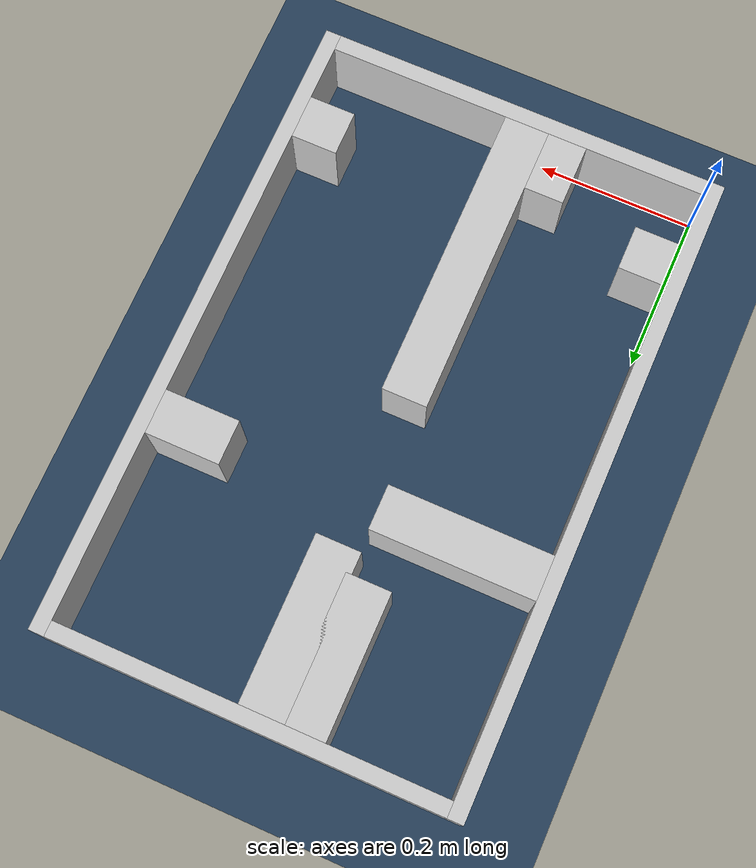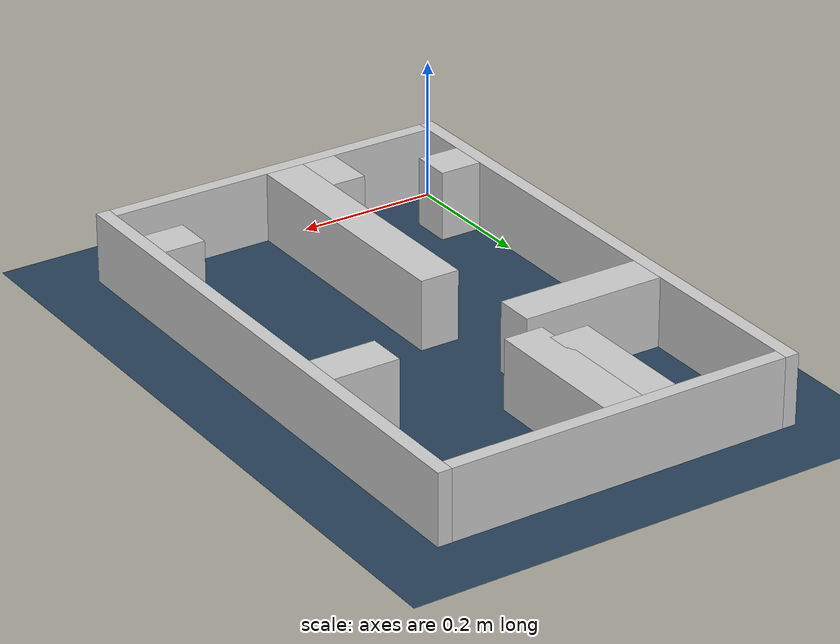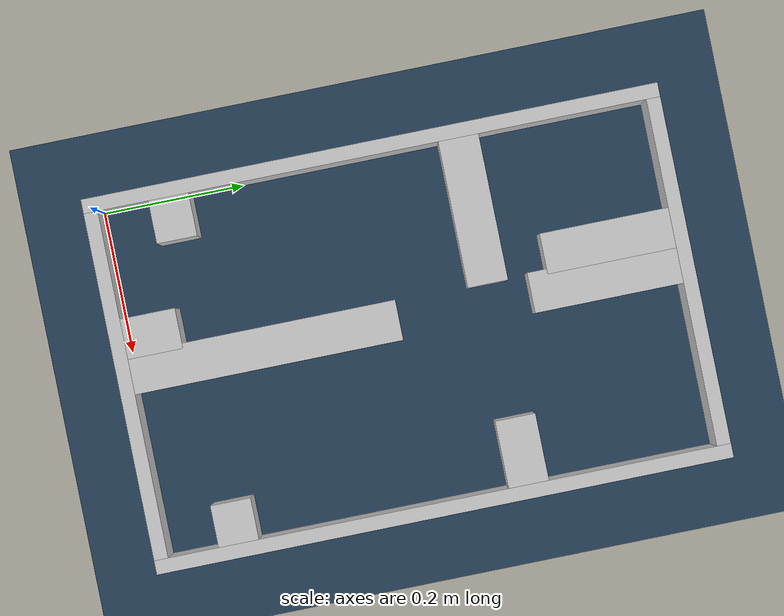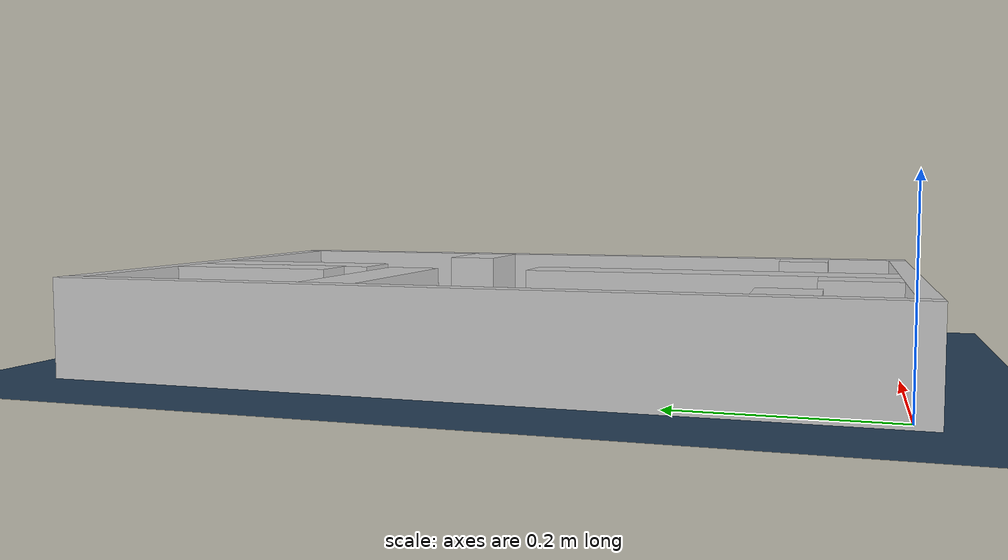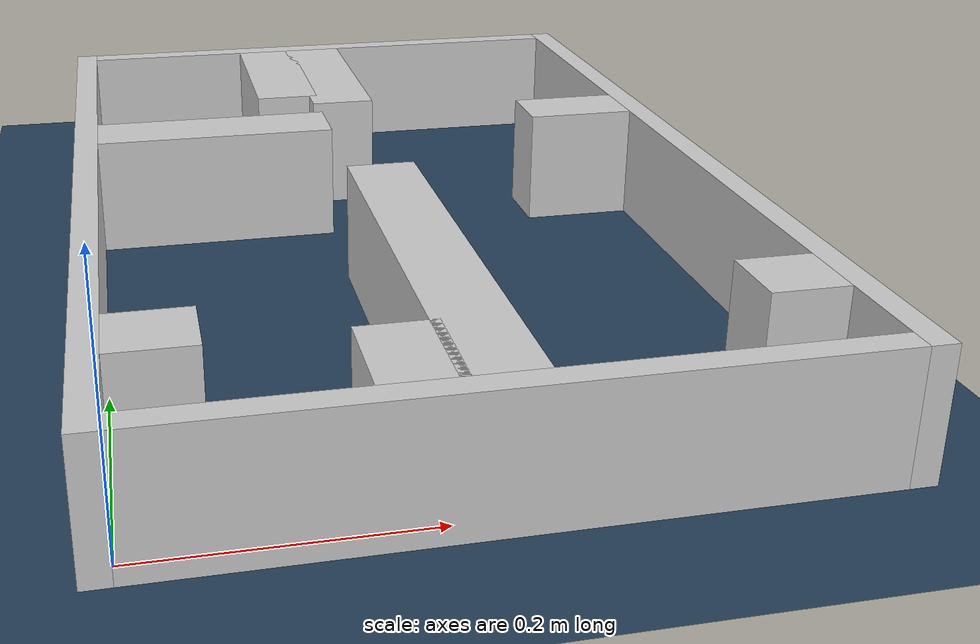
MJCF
<?xml version="1.0" ?>
<mujoco model="generated_real_template">
  <compiler angle="degree"/>
  <option timestep="0.002" integrator="implicitfast" iterations="100" cone="elliptic"/>
  <default>
    <geom density="1"/>
  </default>
  <asset>
    <texture builtin="gradient" height="3072" rgb1="0.3 0.5 0.7" rgb2="0 0 0" type="skybox" width="512"/>
    <texture builtin="checker" height="300" mark="edge" markrgb="0.8 0.8 0.8" name="groundplane" rgb1="0.2 0.3 0.4" rgb2="0.1 0.2 0.3" type="2d" width="300"/>
    <material name="groundplane" reflectance="0.2" texrepeat="5 5" texture="groundplane" texuniform="true"/>
  </asset>
  <worldbody>
    <light dir="0 0 -1" directional="true" pos="0 0 1.5"/>
    <geom name="floor" type="plane" condim="4" friction="0.5 0.005 0.001" material="groundplane" size="0 0 0.05"/>
    <body name="walls">
      <geom name="wall_boundary_left" type="box" condim="4" friction="1.0 0.005 0.0001" rgba="0.8 0.8 0.8 1" pos="-0.010000 0.387500 0.050000" euler="0 0 0.000000" size="0.010000 0.407500 0.050000"/>
      <geom name="wall_boundary_right" type="box" condim="4" friction="1.0 0.005 0.0001" rgba="0.8 0.8 0.8 1" pos="0.500000 0.387500 0.050000" euler="0 0 0.000000" size="0.010000 0.407500 0.050000"/>
      <geom name="wall_boundary_bottom" type="box" condim="4" friction="1.0 0.005 0.0001" rgba="0.8 0.8 0.8 1" pos="0.245000 -0.010000 0.050000" euler="0 0 0.000000" size="0.245000 0.010000 0.050000"/>
      <geom name="wall_boundary_top" type="box" condim="4" friction="1.0 0.005 0.0001" rgba="0.8 0.8 0.8 1" pos="0.245000 0.785000 0.050000" euler="0 0 0.000000" size="0.245000 0.010000 0.050000"/>
      <geom name="wall_inner_1_1" type="box" condim="4" friction="1.0 0.005 0.0001" rgba="0.8 0.8 0.8 1" pos="0.030460 0.099682 0.050000" euler="0 0 0.000000" size="0.030460 0.028500 0.050000"/>
      <geom name="wall_inner_1_2" type="box" condim="4" friction="1.0 0.005 0.0001" rgba="0.8 0.8 0.8 1" pos="0.460582 0.099682 0.050000" euler="0 0 0.000000" size="0.029418 0.028500 0.050000"/>
      <geom name="wall_inner_2_1" type="box" condim="4" friction="1.0 0.005 0.0001" rgba="0.8 0.8 0.8 1" pos="0.103339 0.509435 0.050000" euler="0 0 0.000000" size="0.103339 0.028500 0.050000"/>
      <geom name="wall_inner_2_2" type="box" condim="4" friction="1.0 0.005 0.0001" rgba="0.8 0.8 0.8 1" pos="0.442578 0.509435 0.050000" euler="0 0 0.000000" size="0.047422 0.028500 0.050000"/>
      <geom name="wall_inner_3_1" type="box" condim="4" friction="1.0 0.005 0.0001" rgba="0.8 0.8 0.8 1" pos="0.231104 0.189533 0.050000" euler="0 0 90.000000" size="0.189533 0.028500 0.050000"/>
      <geom name="wall_inner_3_2" type="box" condim="4" friction="1.0 0.005 0.0001" rgba="0.8 0.8 0.8 1" pos="0.231104 0.670210 0.050000" euler="0 0 90.000000" size="0.104790 0.028500 0.050000"/>
      <geom name="wall_inner_4_1" type="box" condim="4" friction="1.0 0.005 0.0001" rgba="0.8 0.8 0.8 1" pos="0.181336 0.038899 0.050000" euler="0 0 90.000000" size="0.038899 0.028500 0.050000"/>
      <geom name="wall_inner_4_2" type="box" condim="4" friction="1.0 0.005 0.0001" rgba="0.8 0.8 0.8 1" pos="0.181336 0.684041 0.050000" euler="0 0 90.000000" size="0.090959 0.028500 0.050000"/>
    </body>
  </worldbody>
</mujoco>
